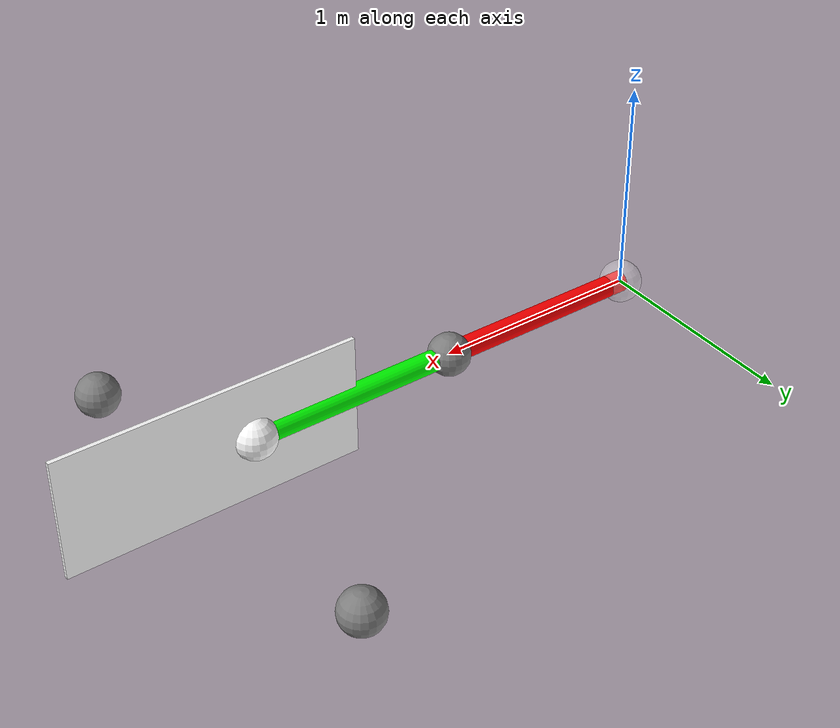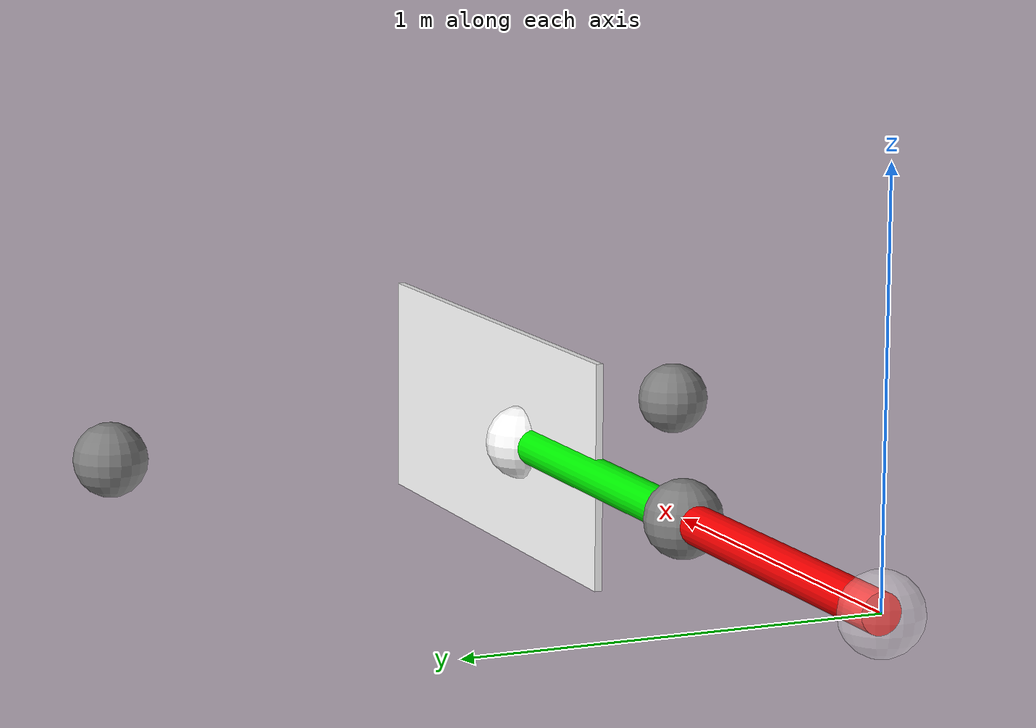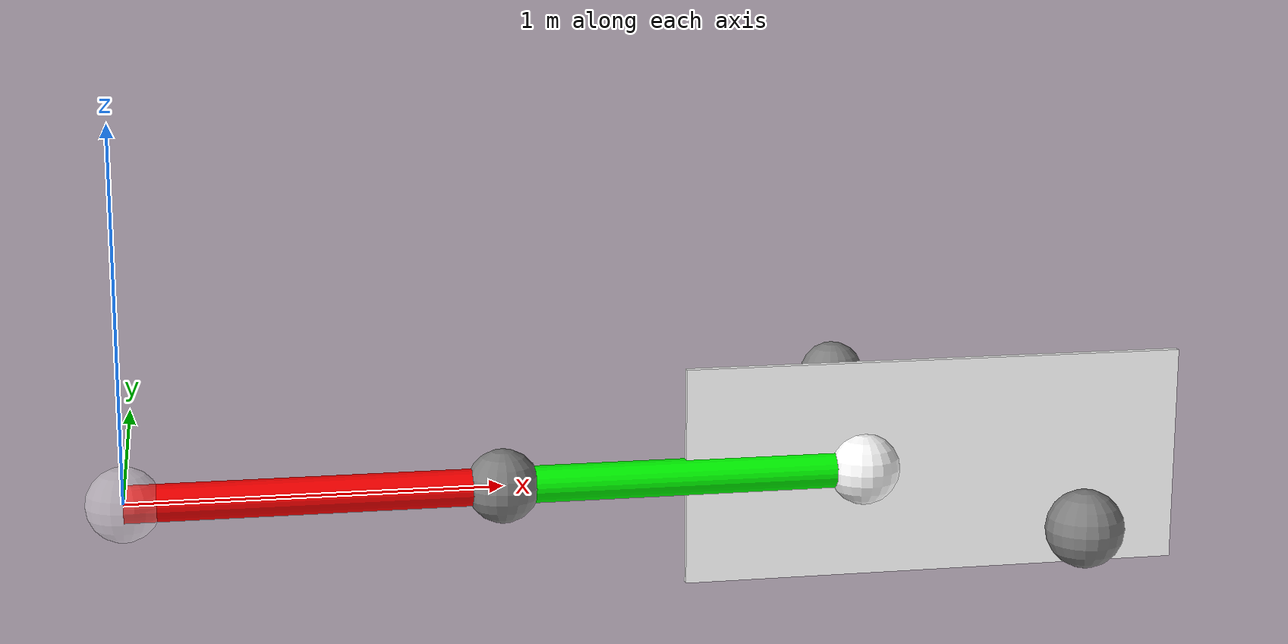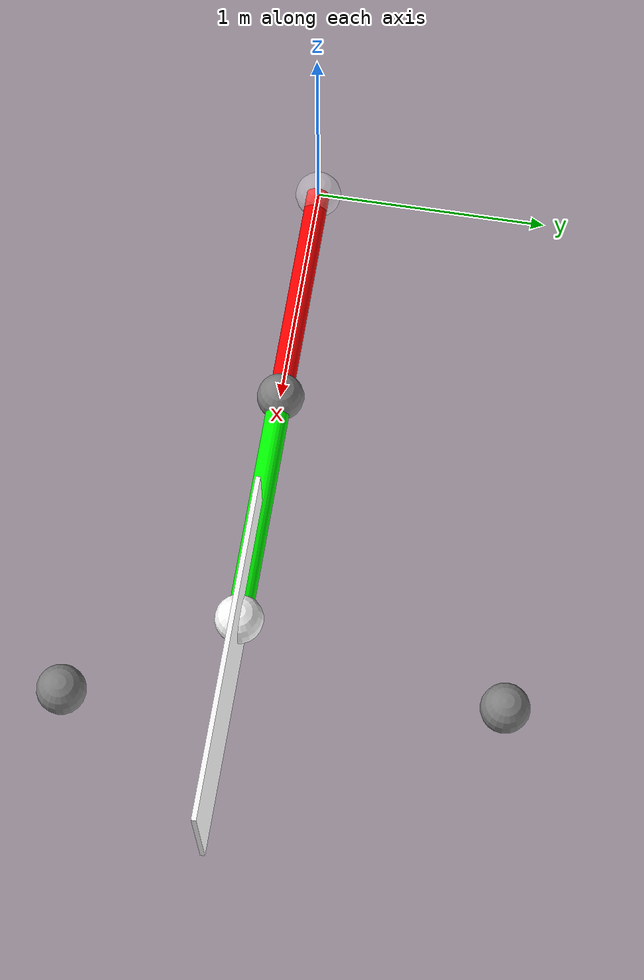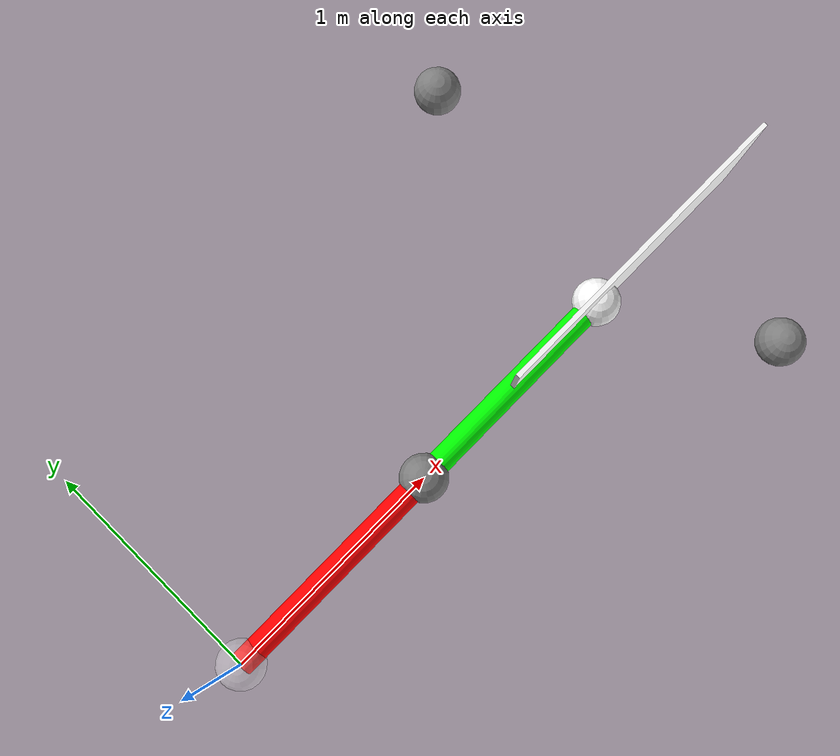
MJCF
<!-- https://mujoco.readthedocs.io/en/latest/overview.html?highlight=hello.xml#examples -->
<mujoco>
  <compiler angle="radian"/>
  <option gravity = "0 -9.81 0" timestep=".005"/>
  <default>
    <geom solimp=".9 .99 .005" solref=".015 1" friction="1 0.005 0.0001"/>
  </default>
  <worldbody>
    <camera name="top" mode="fixed" pos="0 0 6" euler="0 0 0"/>
    <light diffuse="0 0 0" pos="0 0 10" dir="0 0 -1"/>
    <site name="origin" size="0.1" rgba="1 1 1 .3" pos="0 0 0"/>
    <body pos="0 0 0">
      <joint name="joint0" type="hinge" axis = "0 0 -1" pos = "0 0 0"
        stiffness = "0" damping="2" range = "-2.1 2.1" limited = "true"/>
      <geom name="arm1" type="cylinder" size="0.05" fromto="0 0 0 1 0 0"
        rgba="1 0 0 1" density="50000"/>
      <body pos="1 0 0">
        <joint name="joint1" type="hinge" axis = "0 0 1" pos = "0 0 0"
          damping="2"
          range = "0 .8" limited = "true"
          />
        <geom name="arm2" type="cylinder" size="0.05" fromto="0 0 0 1 0 0"
          rgba="0 1 0 1" density="50000"/>
        <site name="elbow" size="0.1" pos="0 0 0"/>
          <!--springref=".33" stiffness="10"-->
        <body pos="1 0 0">
            <site name="tip" size="0.1" pos="0 0 0"/>
            <geom name="tip_body" type="sphere" size="0.1" pos="0 0 0"
              rgba="1 1 1 1" density="100000"/>
        </body>
      </body>
    </body>
    <body name="lever" pos="2.2 0 0">
      <geom type="box" size=".7 .01 .3" rgba="1 1 1 1" pos="0 0 0"
        density="100"/>
      <joint name="leverjoint" type="hinge" axis = "0 0 1" pos = ".7 0 0"
        stiffness="500" damping="5" limited="true" range="0 .3"
        solimplimit=".9 .99 .005" solreflimit=".015 1"/>
    </body>
    <body pos="2.2 0 0">
      <site name="target1" size="0.1" pos=".2 -.643 0"/>
    </body>
    <body pos="2.2 0 0">
      <site name="target2" size="0.1" pos="0 1.1 0"/>
    </body>
  </worldbody>

  <actuator>
    <motor name="torque0" joint="joint0"  gear="15" />
    <motor name="torque1" joint="joint1"  gear="15" />
  </actuator>
  <sensor>
    <touch name="tiptouch" site="tip"/>
  </sensor>
  <keyframe>
    <key name="k0" qpos="-.4 .2 0"/>
  </keyframe>
</mujoco>
